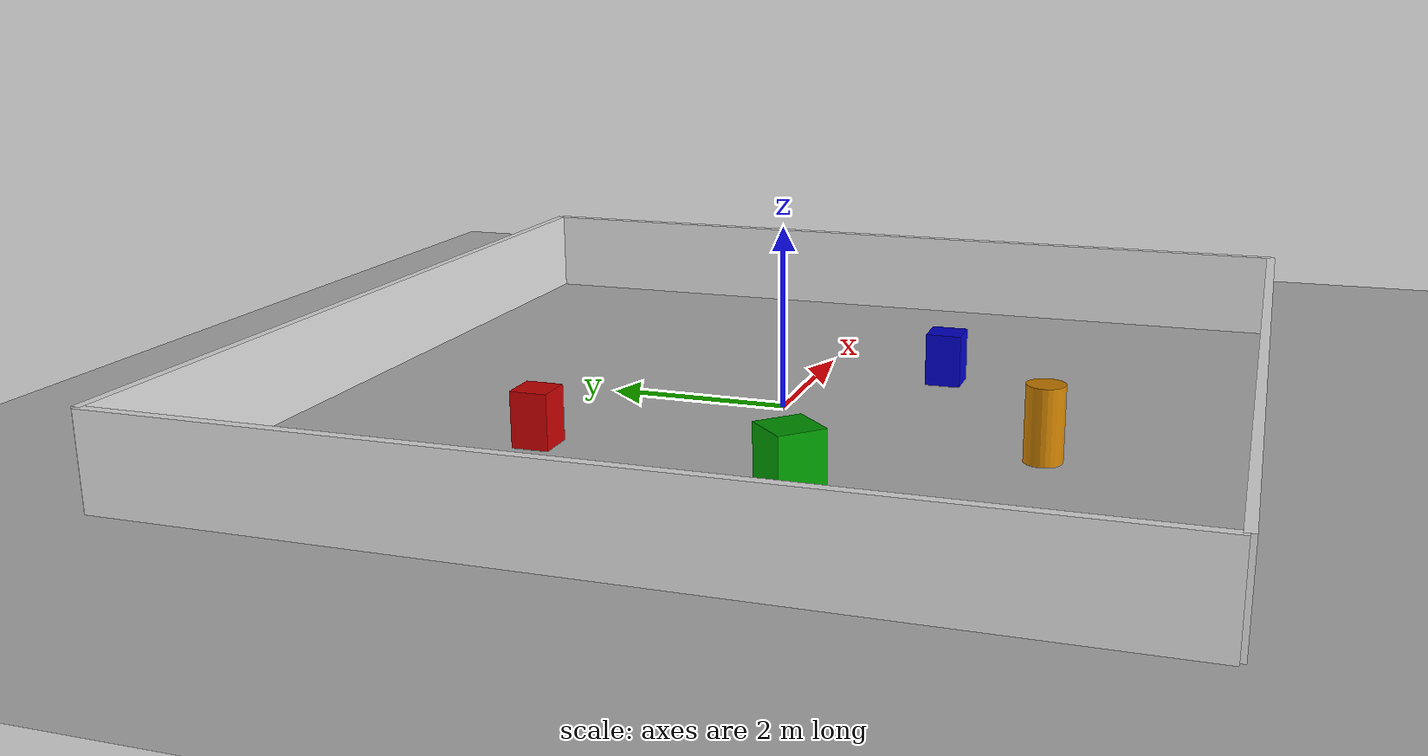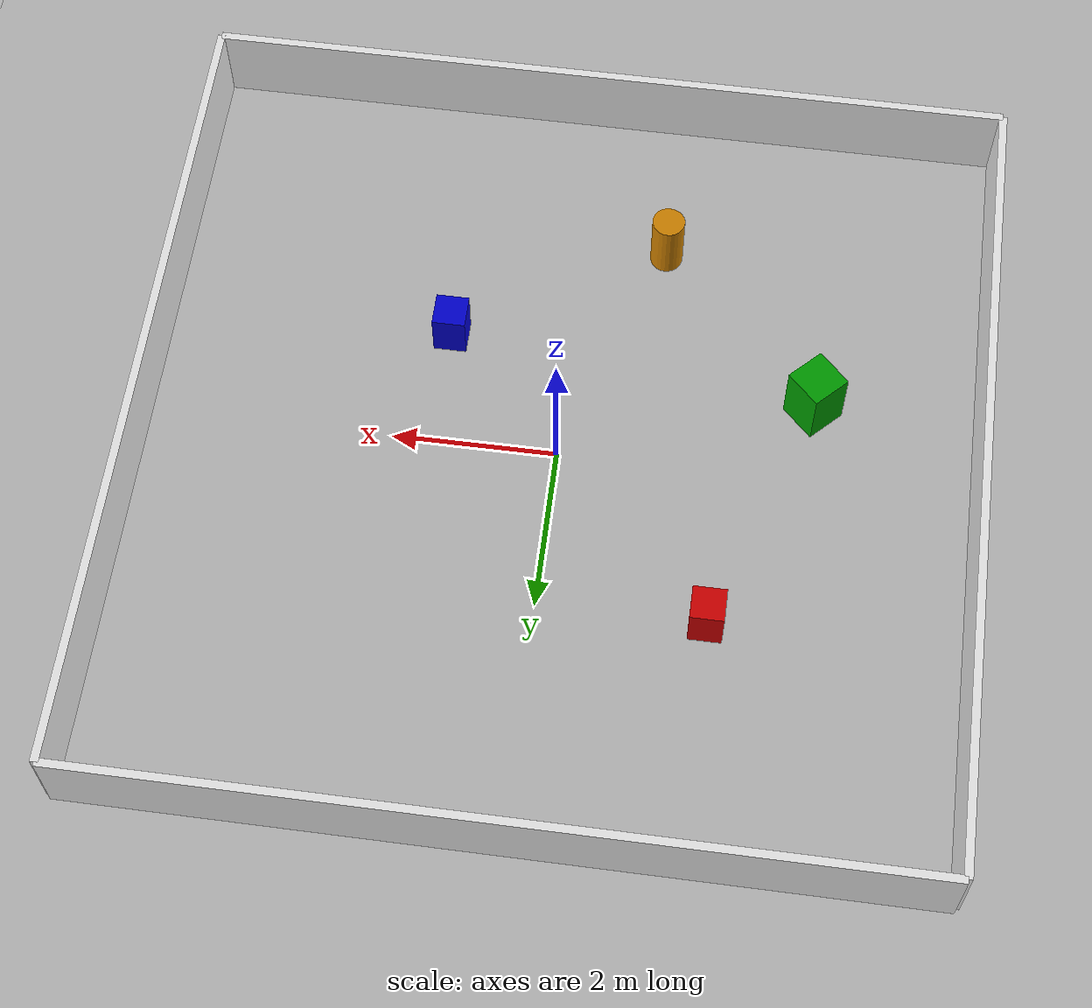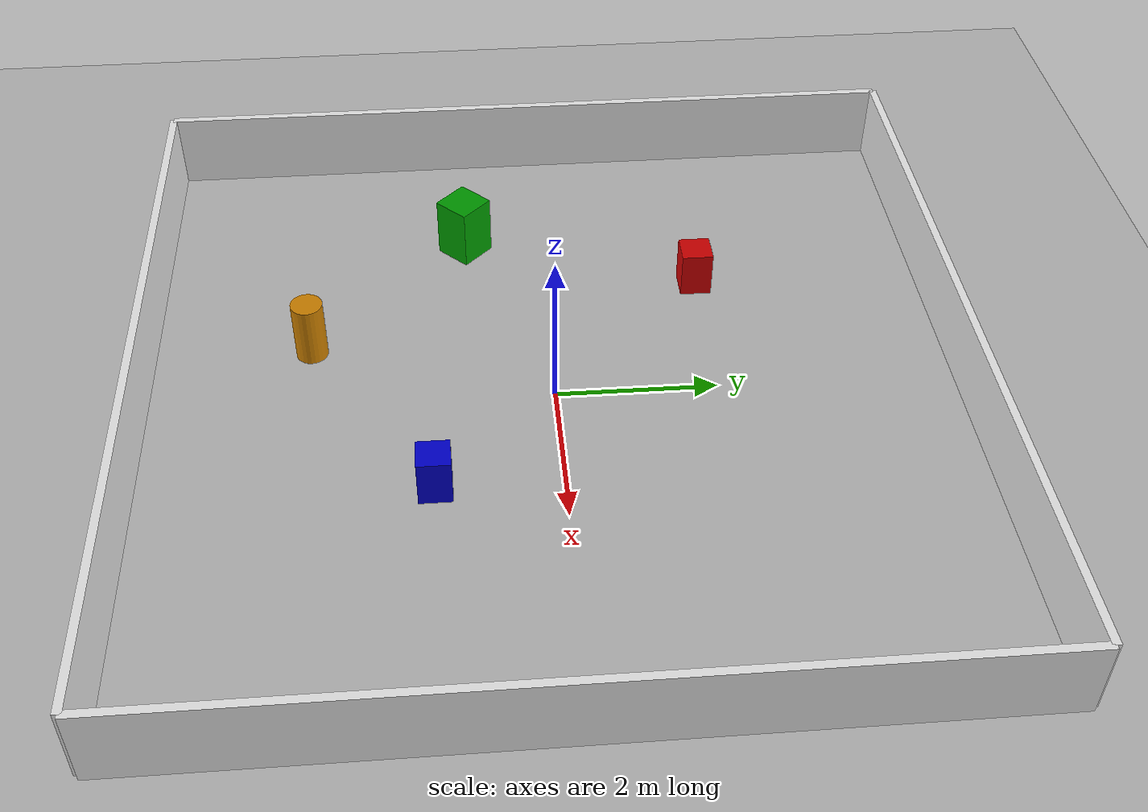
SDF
<?xml version="1.0"?>
<sdf version="1.9">
  <world name="omni_robot_world">

    <!-- Gazebo Harmonic sistem eklentileri -->
    <plugin filename="gz-sim-physics-system"
            name="gz::sim::systems::Physics"/>
    <plugin filename="gz-sim-sensors-system"
            name="gz::sim::systems::Sensors">
      <render_engine>ogre2</render_engine>
    </plugin>
    <plugin filename="gz-sim-scene-broadcaster-system"
            name="gz::sim::systems::SceneBroadcaster"/>
    <plugin filename="gz-sim-user-commands-system"
            name="gz::sim::systems::UserCommands"/>

    <!-- Fizik -->
    <physics name="default_physics" type="ode">
      <max_step_size>0.001</max_step_size>
      <real_time_factor>1.0</real_time_factor>
    </physics>

    <gravity>0 0 -9.81</gravity>

    <!-- Işık -->
    <light name="sun" type="directional">
      <cast_shadows>true</cast_shadows>
      <pose>0 0 10 0 0 0</pose>
      <diffuse>0.9 0.9 0.9 1</diffuse>
      <specular>0.2 0.2 0.2 1</specular>
      <direction>-0.5 0.1 -0.9</direction>
    </light>

    <!-- Zemin -->
    <model name="ground_plane">
      <static>true</static>
      <link name="link">
        <collision name="collision">
          <geometry>
            <plane>
              <normal>0 0 1</normal>
              <size>20 20</size>
            </plane>
          </geometry>
          <surface>
            <friction>
              <ode><mu>1.0</mu><mu2>1.0</mu2></ode>
            </friction>
          </surface>
        </collision>
        <visual name="visual">
          <cast_shadows>false</cast_shadows>
          <geometry>
            <plane>
              <normal>0 0 1</normal>
              <size>20 20</size>
            </plane>
          </geometry>
          <material>
            <ambient>0.7 0.7 0.7 1</ambient>
            <diffuse>0.7 0.7 0.7 1</diffuse>
            <specular>0.1 0.1 0.1 1</specular>
          </material>
        </visual>
      </link>
    </model>

    <!-- Kuzey duvarı (y = +5) -->
    <model name="wall_north">
      <static>true</static>
      <pose>0 5 0.5 0 0 0</pose>
      <link name="link">
        <collision name="col">
          <geometry><box><size>10 0.1 1.0</size></box></geometry>
        </collision>
        <visual name="vis">
          <geometry><box><size>10 0.1 1.0</size></box></geometry>
          <material>
            <ambient>0.9 0.9 0.9 1</ambient>
            <diffuse>0.9 0.9 0.9 1</diffuse>
          </material>
        </visual>
      </link>
    </model>

    <!-- Güney duvarı (y = -5) -->
    <model name="wall_south">
      <static>true</static>
      <pose>0 -5 0.5 0 0 0</pose>
      <link name="link">
        <collision name="col">
          <geometry><box><size>10 0.1 1.0</size></box></geometry>
        </collision>
        <visual name="vis">
          <geometry><box><size>10 0.1 1.0</size></box></geometry>
          <material>
            <ambient>0.9 0.9 0.9 1</ambient>
            <diffuse>0.9 0.9 0.9 1</diffuse>
          </material>
        </visual>
      </link>
    </model>

    <!-- Doğu duvarı (x = +5) -->
    <model name="wall_east">
      <static>true</static>
      <pose>5 0 0.5 0 0 0</pose>
      <link name="link">
        <collision name="col">
          <geometry><box><size>0.1 10 1.0</size></box></geometry>
        </collision>
        <visual name="vis">
          <geometry><box><size>0.1 10 1.0</size></box></geometry>
          <material>
            <ambient>0.9 0.9 0.9 1</ambient>
            <diffuse>0.9 0.9 0.9 1</diffuse>
          </material>
        </visual>
      </link>
    </model>

    <!-- Batı duvarı (x = -5) -->
    <model name="wall_west">
      <static>true</static>
      <pose>-5 0 0.5 0 0 0</pose>
      <link name="link">
        <collision name="col">
          <geometry><box><size>0.1 10 1.0</size></box></geometry>
        </collision>
        <visual name="vis">
          <geometry><box><size>0.1 10 1.0</size></box></geometry>
          <material>
            <ambient>0.9 0.9 0.9 1</ambient>
            <diffuse>0.9 0.9 0.9 1</diffuse>
          </material>
        </visual>
      </link>
    </model>

    <!-- Kutu engel 1 — sol ön -->
    <model name="obstacle_box_1">
      <static>true</static>
      <pose>-2.0 2.0 0.3 0 0 0</pose>
      <link name="link">
        <collision name="col">
          <geometry><box><size>0.4 0.4 0.6</size></box></geometry>
        </collision>
        <visual name="vis">
          <geometry><box><size>0.4 0.4 0.6</size></box></geometry>
          <material>
            <ambient>0.8 0.0 0.0 1</ambient>
            <diffuse>0.8 0.0 0.0 1</diffuse>
          </material>
        </visual>
      </link>
    </model>

    <!-- Kutu engel 2 — sağ ön -->
    <model name="obstacle_box_2">
      <static>true</static>
      <pose>1.5 -1.5 0.3 0 0 0</pose>
      <link name="link">
        <collision name="col">
          <geometry><box><size>0.4 0.4 0.6</size></box></geometry>
        </collision>
        <visual name="vis">
          <geometry><box><size>0.4 0.4 0.6</size></box></geometry>
          <material>
            <ambient>0.0 0.0 0.8 1</ambient>
            <diffuse>0.0 0.0 0.8 1</diffuse>
          </material>
        </visual>
      </link>
    </model>

    <!-- Silindir engel — arka sağ -->
    <model name="obstacle_cylinder_1">
      <static>true</static>
      <pose>-1.0 -3.0 0.4 0 0 0</pose>
      <link name="link">
        <collision name="col">
          <geometry><cylinder><radius>0.2</radius><length>0.8</length></cylinder></geometry>
        </collision>
        <visual name="vis">
          <geometry><cylinder><radius>0.2</radius><length>0.8</length></cylinder></geometry>
          <material>
            <ambient>0.8 0.5 0.0 1</ambient>
            <diffuse>0.8 0.5 0.0 1</diffuse>
          </material>
        </visual>
      </link>
    </model>

    <!-- Büyük kutu — arka sol -->
    <model name="obstacle_box_3">
      <static>true</static>
      <pose>-3.0 -1.0 0.4 0 0 0.785</pose>
      <link name="link">
        <collision name="col">
          <geometry><box><size>0.5 0.5 0.8</size></box></geometry>
        </collision>
        <visual name="vis">
          <geometry><box><size>0.5 0.5 0.8</size></box></geometry>
          <material>
            <ambient>0.0 0.6 0.0 1</ambient>
            <diffuse>0.0 0.6 0.0 1</diffuse>
          </material>
        </visual>
      </link>
    </model>

  </world>
</sdf>
